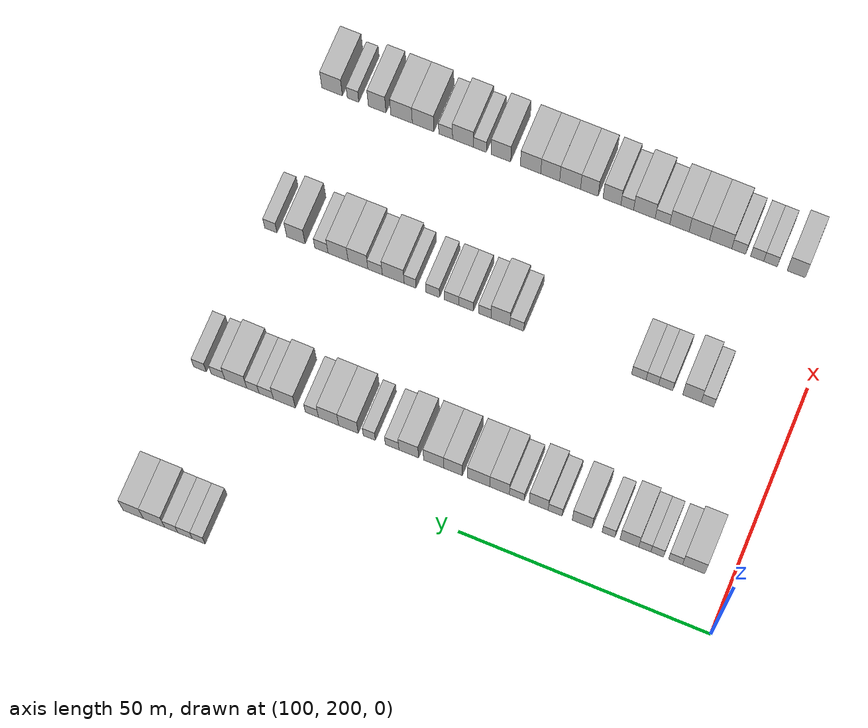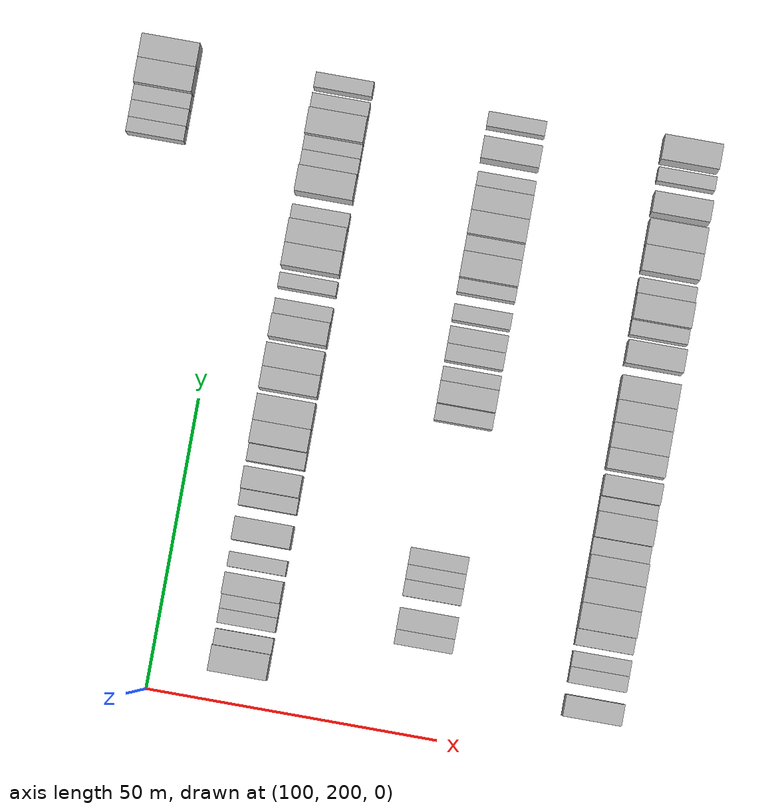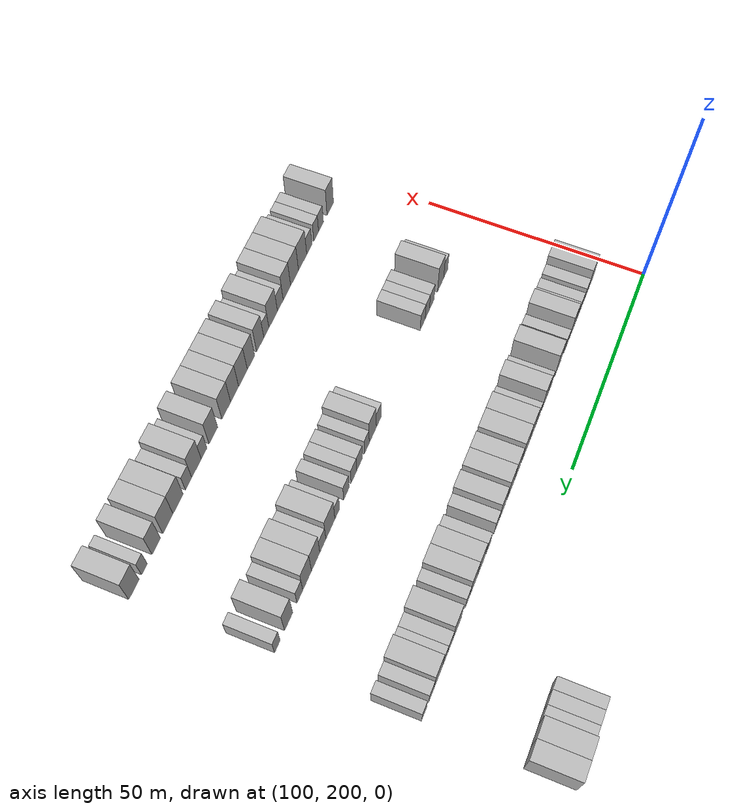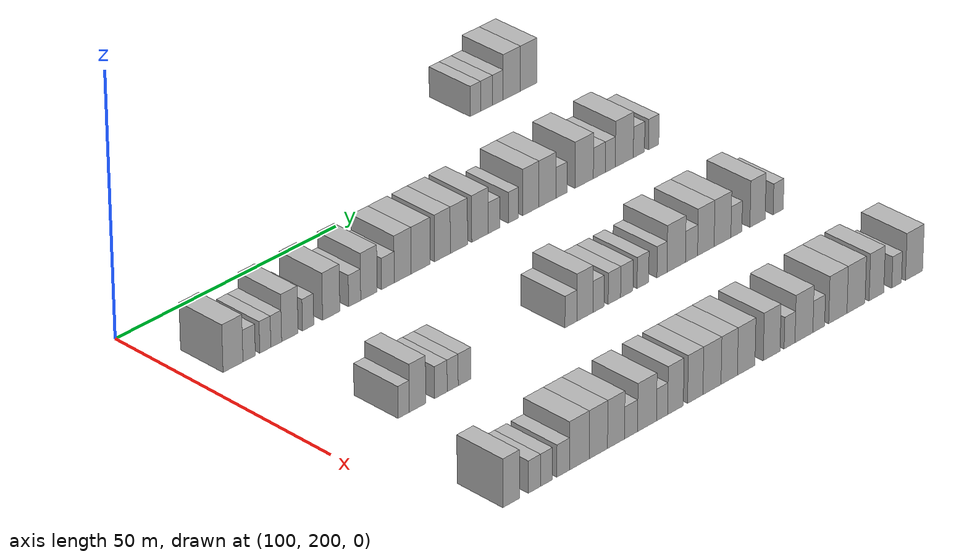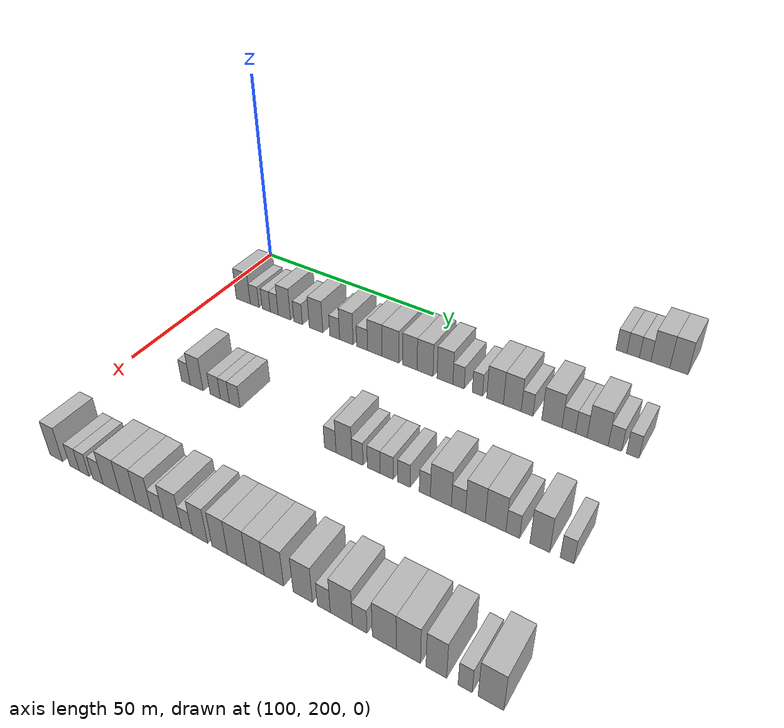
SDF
<sdf version="1.6">
 <world name="default">
  <model name="building_633">
   <static>1</static>
   <pose>85.0000 293.5339 0 0.000000 0.000000 0.000000</pose>
   <link name="link">
    <pose>0 0 3.00 0 0 0</pose>
    <collision name="collision"><geometry><box><size>10.0000 2.5480 6.0000</size></box></geometry></collision>
    <visual name="visual">
     <cast_shadows>0</cast_shadows>
     <geometry><box><size>10.0000 2.5480 6.0000</size></box></geometry>
     <material>
      <script>
       <uri>model://HANNAS_wall/materials/scripts</uri>
       <uri>model://HANNAS_wall/materials/textures</uri>
       <name>vrc/HANNAS_wall</name>
      </script>
     </material>
    </visual>
   </link>
  </model>
  <model name="building_634">
   <static>1</static>
   <pose>85.0000 296.2782 0 0.000000 0.000000 0.000000</pose>
   <link name="link">
    <pose>0 0 3.00 0 0 0</pose>
    <collision name="collision"><geometry><box><size>10.0000 2.9406 6.0000</size></box></geometry></collision>
    <visual name="visual">
     <cast_shadows>0</cast_shadows>
     <geometry><box><size>10.0000 2.9406 6.0000</size></box></geometry>
     <material>
      <script>
       <uri>model://HANNAS_wall/materials/scripts</uri>
       <uri>model://HANNAS_wall/materials/textures</uri>
       <name>vrc/HANNAS_wall</name>
      </script>
     </material>
    </visual>
   </link>
  </model>
  <model name="building_635">
   <static>1</static>
   <pose>85.0000 299.0846 0 0.000000 0.000000 0.000000</pose>
   <link name="link">
    <pose>0 0 3.00 0 0 0</pose>
    <collision name="collision"><geometry><box><size>10.0000 2.6723 6.0000</size></box></geometry></collision>
    <visual name="visual">
     <cast_shadows>0</cast_shadows>
     <geometry><box><size>10.0000 2.6723 6.0000</size></box></geometry>
     <material>
      <script>
       <uri>model://HANNAS_wall/materials/scripts</uri>
       <uri>model://HANNAS_wall/materials/textures</uri>
       <name>vrc/HANNAS_wall</name>
      </script>
     </material>
    </visual>
   </link>
  </model>
  <model name="building_636">
   <static>1</static>
   <pose>85.0000 302.5750 0 0.000000 0.000000 0.000000</pose>
   <link name="link">
    <pose>0 0 4.50 0 0 0</pose>
    <collision name="collision"><geometry><box><size>10.0000 4.3084 9.0000</size></box></geometry></collision>
    <visual name="visual">
     <cast_shadows>0</cast_shadows>
     <geometry><box><size>10.0000 4.3084 9.0000</size></box></geometry>
     <material>
      <script>
       <uri>model://HANNAS_wall/materials/scripts</uri>
       <uri>model://HANNAS_wall/materials/textures</uri>
       <name>vrc/HANNAS_wall</name>
      </script>
     </material>
    </visual>
   </link>
  </model>
  <model name="building_637">
   <static>1</static>
   <pose>85.0000 306.7783 0 0.000000 0.000000 0.000000</pose>
   <link name="link">
    <pose>0 0 4.50 0 0 0</pose>
    <collision name="collision"><geometry><box><size>10.0000 4.0982 9.0000</size></box></geometry></collision>
    <visual name="visual">
     <cast_shadows>0</cast_shadows>
     <geometry><box><size>10.0000 4.0982 9.0000</size></box></geometry>
     <material>
      <script>
       <uri>model://HANNAS_wall/materials/scripts</uri>
       <uri>model://HANNAS_wall/materials/textures</uri>
       <name>vrc/HANNAS_wall</name>
      </script>
     </material>
    </visual>
   </link>
  </model>
  <model name="building_836">
   <static>1</static>
   <pose>115.0000 207.2907 0 0.000000 0.000000 0.000000</pose>
   <link name="link">
    <pose>0 0 4.50 0 0 0</pose>
    <collision name="collision"><geometry><box><size>10.0000 4.4236 9.0000</size></box></geometry></collision>
    <visual name="visual">
     <cast_shadows>0</cast_shadows>
     <geometry><box><size>10.0000 4.4236 9.0000</size></box></geometry>
     <material>
      <script>
       <uri>model://HANNAS_wall/materials/scripts</uri>
       <uri>model://HANNAS_wall/materials/textures</uri>
       <name>vrc/HANNAS_wall</name>
      </script>
     </material>
    </visual>
   </link>
  </model>
  <model name="building_837">
   <static>1</static>
   <pose>115.0000 210.8788 0 0.000000 0.000000 0.000000</pose>
   <link name="link">
    <pose>0 0 3.00 0 0 0</pose>
    <collision name="collision"><geometry><box><size>10.0000 2.7527 6.0000</size></box></geometry></collision>
    <visual name="visual">
     <cast_shadows>0</cast_shadows>
     <geometry><box><size>10.0000 2.7527 6.0000</size></box></geometry>
     <material>
      <script>
       <uri>model://HANNAS_wall/materials/scripts</uri>
       <uri>model://HANNAS_wall/materials/textures</uri>
       <name>vrc/HANNAS_wall</name>
      </script>
     </material>
    </visual>
   </link>
  </model>
  <model name="building_838">
   <static>1</static>
   <pose>115.0000 214.4944 0 0.000000 0.000000 0.000000</pose>
   <link name="link">
    <pose>0 0 3.00 0 0 0</pose>
    <collision name="collision"><geometry><box><size>10.0000 2.4784 6.0000</size></box></geometry></collision>
    <visual name="visual">
     <cast_shadows>0</cast_shadows>
     <geometry><box><size>10.0000 2.4784 6.0000</size></box></geometry>
     <material>
      <script>
       <uri>model://HANNAS_wall/materials/scripts</uri>
       <uri>model://HANNAS_wall/materials/textures</uri>
       <name>vrc/HANNAS_wall</name>
      </script>
     </material>
    </visual>
   </link>
  </model>
  <model name="building_839">
   <static>1</static>
   <pose>115.0000 216.9466 0 0.000000 0.000000 0.000000</pose>
   <link name="link">
    <pose>0 0 3.00 0 0 0</pose>
    <collision name="collision"><geometry><box><size>10.0000 2.4261 6.0000</size></box></geometry></collision>
    <visual name="visual">
     <cast_shadows>0</cast_shadows>
     <geometry><box><size>10.0000 2.4261 6.0000</size></box></geometry>
     <material>
      <script>
       <uri>model://HANNAS_wall/materials/scripts</uri>
       <uri>model://HANNAS_wall/materials/textures</uri>
       <name>vrc/HANNAS_wall</name>
      </script>
     </material>
    </visual>
   </link>
  </model>
  <model name="building_840">
   <static>1</static>
   <pose>115.0000 220.0185 0 0.000000 0.000000 0.000000</pose>
   <link name="link">
    <pose>0 0 4.50 0 0 0</pose>
    <collision name="collision"><geometry><box><size>10.0000 3.7176 9.0000</size></box></geometry></collision>
    <visual name="visual">
     <cast_shadows>0</cast_shadows>
     <geometry><box><size>10.0000 3.7176 9.0000</size></box></geometry>
     <material>
      <script>
       <uri>model://HANNAS_wall/materials/scripts</uri>
       <uri>model://HANNAS_wall/materials/textures</uri>
       <name>vrc/HANNAS_wall</name>
      </script>
     </material>
    </visual>
   </link>
  </model>
  <model name="building_841">
   <static>1</static>
   <pose>115.0000 224.1563 0 0.000000 0.000000 0.000000</pose>
   <link name="link">
    <pose>0 0 3.00 0 0 0</pose>
    <collision name="collision"><geometry><box><size>10.0000 2.5581 6.0000</size></box></geometry></collision>
    <visual name="visual">
     <cast_shadows>0</cast_shadows>
     <geometry><box><size>10.0000 2.5581 6.0000</size></box></geometry>
     <material>
      <script>
       <uri>model://HANNAS_wall/materials/scripts</uri>
       <uri>model://HANNAS_wall/materials/textures</uri>
       <name>vrc/HANNAS_wall</name>
      </script>
     </material>
    </visual>
   </link>
  </model>
  <model name="building_842">
   <static>1</static>
   <pose>115.0000 229.4075 0 0.000000 0.000000 0.000000</pose>
   <link name="link">
    <pose>0 0 4.50 0 0 0</pose>
    <collision name="collision"><geometry><box><size>10.0000 3.9442 9.0000</size></box></geometry></collision>
    <visual name="visual">
     <cast_shadows>0</cast_shadows>
     <geometry><box><size>10.0000 3.9442 9.0000</size></box></geometry>
     <material>
      <script>
       <uri>model://HANNAS_wall/materials/scripts</uri>
       <uri>model://HANNAS_wall/materials/textures</uri>
       <name>vrc/HANNAS_wall</name>
      </script>
     </material>
    </visual>
   </link>
  </model>
  <model name="building_843">
   <static>1</static>
   <pose>115.0000 234.7738 0 0.000000 0.000000 0.000000</pose>
   <link name="link">
    <pose>0 0 3.00 0 0 0</pose>
    <collision name="collision"><geometry><box><size>10.0000 2.7885 6.0000</size></box></geometry></collision>
    <visual name="visual">
     <cast_shadows>0</cast_shadows>
     <geometry><box><size>10.0000 2.7885 6.0000</size></box></geometry>
     <material>
      <script>
       <uri>model://HANNAS_wall/materials/scripts</uri>
       <uri>model://HANNAS_wall/materials/textures</uri>
       <name>vrc/HANNAS_wall</name>
      </script>
     </material>
    </visual>
   </link>
  </model>
  <model name="building_844">
   <static>1</static>
   <pose>115.0000 238.0710 0 0.000000 0.000000 0.000000</pose>
   <link name="link">
    <pose>0 0 4.50 0 0 0</pose>
    <collision name="collision"><geometry><box><size>10.0000 3.8059 9.0000</size></box></geometry></collision>
    <visual name="visual">
     <cast_shadows>0</cast_shadows>
     <geometry><box><size>10.0000 3.8059 9.0000</size></box></geometry>
     <material>
      <script>
       <uri>model://HANNAS_wall/materials/scripts</uri>
       <uri>model://HANNAS_wall/materials/textures</uri>
       <name>vrc/HANNAS_wall</name>
      </script>
     </material>
    </visual>
   </link>
  </model>
  <model name="building_845">
   <static>1</static>
   <pose>115.0000 242.4579 0 0.000000 0.000000 0.000000</pose>
   <link name="link">
    <pose>0 0 3.00 0 0 0</pose>
    <collision name="collision"><geometry><box><size>10.0000 2.9680 6.0000</size></box></geometry></collision>
    <visual name="visual">
     <cast_shadows>0</cast_shadows>
     <geometry><box><size>10.0000 2.9680 6.0000</size></box></geometry>
     <material>
      <script>
       <uri>model://HANNAS_wall/materials/scripts</uri>
       <uri>model://HANNAS_wall/materials/textures</uri>
       <name>vrc/HANNAS_wall</name>
      </script>
     </material>
    </visual>
   </link>
  </model>
  <model name="building_846">
   <static>1</static>
   <pose>115.0000 245.8985 0 0.000000 0.000000 0.000000</pose>
   <link name="link">
    <pose>0 0 4.50 0 0 0</pose>
    <collision name="collision"><geometry><box><size>10.0000 3.9132 9.0000</size></box></geometry></collision>
    <visual name="visual">
     <cast_shadows>0</cast_shadows>
     <geometry><box><size>10.0000 3.9132 9.0000</size></box></geometry>
     <material>
      <script>
       <uri>model://HANNAS_wall/materials/scripts</uri>
       <uri>model://HANNAS_wall/materials/textures</uri>
       <name>vrc/HANNAS_wall</name>
      </script>
     </material>
    </visual>
   </link>
  </model>
  <model name="building_847">
   <static>1</static>
   <pose>115.0000 250.1018 0 0.000000 0.000000 0.000000</pose>
   <link name="link">
    <pose>0 0 4.50 0 0 0</pose>
    <collision name="collision"><geometry><box><size>10.0000 4.4934 9.0000</size></box></geometry></collision>
    <visual name="visual">
     <cast_shadows>0</cast_shadows>
     <geometry><box><size>10.0000 4.4934 9.0000</size></box></geometry>
     <material>
      <script>
       <uri>model://HANNAS_wall/materials/scripts</uri>
       <uri>model://HANNAS_wall/materials/textures</uri>
       <name>vrc/HANNAS_wall</name>
      </script>
     </material>
    </visual>
   </link>
  </model>
  <model name="building_848">
   <static>1</static>
   <pose>115.0000 255.2104 0 0.000000 0.000000 0.000000</pose>
   <link name="link">
    <pose>0 0 4.50 0 0 0</pose>
    <collision name="collision"><geometry><box><size>10.0000 3.7239 9.0000</size></box></geometry></collision>
    <visual name="visual">
     <cast_shadows>0</cast_shadows>
     <geometry><box><size>10.0000 3.7239 9.0000</size></box></geometry>
     <material>
      <script>
       <uri>model://HANNAS_wall/materials/scripts</uri>
       <uri>model://HANNAS_wall/materials/textures</uri>
       <name>vrc/HANNAS_wall</name>
      </script>
     </material>
    </visual>
   </link>
  </model>
  <model name="building_849">
   <static>1</static>
   <pose>115.0000 259.1088 0 0.000000 0.000000 0.000000</pose>
   <link name="link">
    <pose>0 0 4.50 0 0 0</pose>
    <collision name="collision"><geometry><box><size>10.0000 4.0728 9.0000</size></box></geometry></collision>
    <visual name="visual">
     <cast_shadows>0</cast_shadows>
     <geometry><box><size>10.0000 4.0728 9.0000</size></box></geometry>
     <material>
      <script>
       <uri>model://HANNAS_wall/materials/scripts</uri>
       <uri>model://HANNAS_wall/materials/textures</uri>
       <name>vrc/HANNAS_wall</name>
      </script>
     </material>
    </visual>
   </link>
  </model>
  <model name="building_850">
   <static>1</static>
   <pose>115.0000 264.1243 0 0.000000 0.000000 0.000000</pose>
   <link name="link">
    <pose>0 0 4.50 0 0 0</pose>
    <collision name="collision"><geometry><box><size>10.0000 3.9581 9.0000</size></box></geometry></collision>
    <visual name="visual">
     <cast_shadows>0</cast_shadows>
     <geometry><box><size>10.0000 3.9581 9.0000</size></box></geometry>
     <material>
      <script>
       <uri>model://HANNAS_wall/materials/scripts</uri>
       <uri>model://HANNAS_wall/materials/textures</uri>
       <name>vrc/HANNAS_wall</name>
      </script>
     </material>
    </visual>
   </link>
  </model>
  <model name="building_851">
   <static>1</static>
   <pose>115.0000 267.4891 0 0.000000 0.000000 0.000000</pose>
   <link name="link">
    <pose>0 0 3.00 0 0 0</pose>
    <collision name="collision"><geometry><box><size>10.0000 2.7716 6.0000</size></box></geometry></collision>
    <visual name="visual">
     <cast_shadows>0</cast_shadows>
     <geometry><box><size>10.0000 2.7716 6.0000</size></box></geometry>
     <material>
      <script>
       <uri>model://HANNAS_wall/materials/scripts</uri>
       <uri>model://HANNAS_wall/materials/textures</uri>
       <name>vrc/HANNAS_wall</name>
      </script>
     </material>
    </visual>
   </link>
  </model>
  <model name="building_852">
   <static>1</static>
   <pose>115.0000 272.1061 0 0.000000 0.000000 0.000000</pose>
   <link name="link">
    <pose>0 0 3.00 0 0 0</pose>
    <collision name="collision"><geometry><box><size>10.0000 2.4623 6.0000</size></box></geometry></collision>
    <visual name="visual">
     <cast_shadows>0</cast_shadows>
     <geometry><box><size>10.0000 2.4623 6.0000</size></box></geometry>
     <material>
      <script>
       <uri>model://HANNAS_wall/materials/scripts</uri>
       <uri>model://HANNAS_wall/materials/textures</uri>
       <name>vrc/HANNAS_wall</name>
      </script>
     </material>
    </visual>
   </link>
  </model>
  <model name="building_853">
   <static>1</static>
   <pose>115.0000 276.3105 0 0.000000 0.000000 0.000000</pose>
   <link name="link">
    <pose>0 0 4.50 0 0 0</pose>
    <collision name="collision"><geometry><box><size>10.0000 3.9464 9.0000</size></box></geometry></collision>
    <visual name="visual">
     <cast_shadows>0</cast_shadows>
     <geometry><box><size>10.0000 3.9464 9.0000</size></box></geometry>
     <material>
      <script>
       <uri>model://HANNAS_wall/materials/scripts</uri>
       <uri>model://HANNAS_wall/materials/textures</uri>
       <name>vrc/HANNAS_wall</name>
      </script>
     </material>
    </visual>
   </link>
  </model>
  <model name="building_854">
   <static>1</static>
   <pose>115.0000 280.3459 0 0.000000 0.000000 0.000000</pose>
   <link name="link">
    <pose>0 0 4.50 0 0 0</pose>
    <collision name="collision"><geometry><box><size>10.0000 4.1245 9.0000</size></box></geometry></collision>
    <visual name="visual">
     <cast_shadows>0</cast_shadows>
     <geometry><box><size>10.0000 4.1245 9.0000</size></box></geometry>
     <material>
      <script>
       <uri>model://HANNAS_wall/materials/scripts</uri>
       <uri>model://HANNAS_wall/materials/textures</uri>
       <name>vrc/HANNAS_wall</name>
      </script>
     </material>
    </visual>
   </link>
  </model>
  <model name="building_855">
   <static>1</static>
   <pose>115.0000 283.7492 0 0.000000 0.000000 0.000000</pose>
   <link name="link">
    <pose>0 0 3.00 0 0 0</pose>
    <collision name="collision"><geometry><box><size>10.0000 2.6820 6.0000</size></box></geometry></collision>
    <visual name="visual">
     <cast_shadows>0</cast_shadows>
     <geometry><box><size>10.0000 2.6820 6.0000</size></box></geometry>
     <material>
      <script>
       <uri>model://HANNAS_wall/materials/scripts</uri>
       <uri>model://HANNAS_wall/materials/textures</uri>
       <name>vrc/HANNAS_wall</name>
      </script>
     </material>
    </visual>
   </link>
  </model>
  <model name="building_856">
   <static>1</static>
   <pose>115.0000 289.3333 0 0.000000 0.000000 0.000000</pose>
   <link name="link">
    <pose>0 0 4.50 0 0 0</pose>
    <collision name="collision"><geometry><box><size>10.0000 4.4862 9.0000</size></box></geometry></collision>
    <visual name="visual">
     <cast_shadows>0</cast_shadows>
     <geometry><box><size>10.0000 4.4862 9.0000</size></box></geometry>
     <material>
      <script>
       <uri>model://HANNAS_wall/materials/scripts</uri>
       <uri>model://HANNAS_wall/materials/textures</uri>
       <name>vrc/HANNAS_wall</name>
      </script>
     </material>
    </visual>
   </link>
  </model>
  <model name="building_857">
   <static>1</static>
   <pose>115.0000 293.0464 0 0.000000 0.000000 0.000000</pose>
   <link name="link">
    <pose>0 0 3.00 0 0 0</pose>
    <collision name="collision"><geometry><box><size>10.0000 2.9401 6.0000</size></box></geometry></collision>
    <visual name="visual">
     <cast_shadows>0</cast_shadows>
     <geometry><box><size>10.0000 2.9401 6.0000</size></box></geometry>
     <material>
      <script>
       <uri>model://HANNAS_wall/materials/scripts</uri>
       <uri>model://HANNAS_wall/materials/textures</uri>
       <name>vrc/HANNAS_wall</name>
      </script>
     </material>
    </visual>
   </link>
  </model>
  <model name="building_858">
   <static>1</static>
   <pose>115.0000 295.7673 0 0.000000 0.000000 0.000000</pose>
   <link name="link">
    <pose>0 0 3.00 0 0 0</pose>
    <collision name="collision"><geometry><box><size>10.0000 2.5017 6.0000</size></box></geometry></collision>
    <visual name="visual">
     <cast_shadows>0</cast_shadows>
     <geometry><box><size>10.0000 2.5017 6.0000</size></box></geometry>
     <material>
      <script>
       <uri>model://HANNAS_wall/materials/scripts</uri>
       <uri>model://HANNAS_wall/materials/textures</uri>
       <name>vrc/HANNAS_wall</name>
      </script>
     </material>
    </visual>
   </link>
  </model>
  <model name="building_859">
   <static>1</static>
   <pose>115.0000 299.2565 0 0.000000 0.000000 0.000000</pose>
   <link name="link">
    <pose>0 0 4.50 0 0 0</pose>
    <collision name="collision"><geometry><box><size>10.0000 4.4767 9.0000</size></box></geometry></collision>
    <visual name="visual">
     <cast_shadows>0</cast_shadows>
     <geometry><box><size>10.0000 4.4767 9.0000</size></box></geometry>
     <material>
      <script>
       <uri>model://HANNAS_wall/materials/scripts</uri>
       <uri>model://HANNAS_wall/materials/textures</uri>
       <name>vrc/HANNAS_wall</name>
      </script>
     </material>
    </visual>
   </link>
  </model>
  <model name="building_860">
   <static>1</static>
   <pose>115.0000 302.8868 0 0.000000 0.000000 0.000000</pose>
   <link name="link">
    <pose>0 0 3.00 0 0 0</pose>
    <collision name="collision"><geometry><box><size>10.0000 2.7838 6.0000</size></box></geometry></collision>
    <visual name="visual">
     <cast_shadows>0</cast_shadows>
     <geometry><box><size>10.0000 2.7838 6.0000</size></box></geometry>
     <material>
      <script>
       <uri>model://HANNAS_wall/materials/scripts</uri>
       <uri>model://HANNAS_wall/materials/textures</uri>
       <name>vrc/HANNAS_wall</name>
      </script>
     </material>
    </visual>
   </link>
  </model>
  <model name="building_861">
   <static>1</static>
   <pose>115.0000 306.5700 0 0.000000 0.000000 0.000000</pose>
   <link name="link">
    <pose>0 0 3.00 0 0 0</pose>
    <collision name="collision"><geometry><box><size>10.0000 2.5825 6.0000</size></box></geometry></collision>
    <visual name="visual">
     <cast_shadows>0</cast_shadows>
     <geometry><box><size>10.0000 2.5825 6.0000</size></box></geometry>
     <material>
      <script>
       <uri>model://HANNAS_wall/materials/scripts</uri>
       <uri>model://HANNAS_wall/materials/textures</uri>
       <name>vrc/HANNAS_wall</name>
      </script>
     </material>
    </visual>
   </link>
  </model>
  <model name="building_1058">
   <static>1</static>
   <pose>145.0000 216.2215 0 0.000000 0.000000 0.000000</pose>
   <link name="link">
    <pose>0 0 3.00 0 0 0</pose>
    <collision name="collision"><geometry><box><size>10.0000 2.5117 6.0000</size></box></geometry></collision>
    <visual name="visual">
     <cast_shadows>0</cast_shadows>
     <geometry><box><size>10.0000 2.5117 6.0000</size></box></geometry>
     <material>
      <script>
       <uri>model://HANNAS_wall/materials/scripts</uri>
       <uri>model://HANNAS_wall/materials/textures</uri>
       <name>vrc/HANNAS_wall</name>
      </script>
     </material>
    </visual>
   </link>
  </model>
  <model name="building_1059">
   <static>1</static>
   <pose>145.0000 219.3372 0 0.000000 0.000000 0.000000</pose>
   <link name="link">
    <pose>0 0 4.50 0 0 0</pose>
    <collision name="collision"><geometry><box><size>10.0000 3.7197 9.0000</size></box></geometry></collision>
    <visual name="visual">
     <cast_shadows>0</cast_shadows>
     <geometry><box><size>10.0000 3.7197 9.0000</size></box></geometry>
     <material>
      <script>
       <uri>model://HANNAS_wall/materials/scripts</uri>
       <uri>model://HANNAS_wall/materials/textures</uri>
       <name>vrc/HANNAS_wall</name>
      </script>
     </material>
    </visual>
   </link>
  </model>
  <model name="building_1060">
   <static>1</static>
   <pose>145.0000 224.6215 0 0.000000 0.000000 0.000000</pose>
   <link name="link">
    <pose>0 0 3.00 0 0 0</pose>
    <collision name="collision"><geometry><box><size>10.0000 2.8488 6.0000</size></box></geometry></collision>
    <visual name="visual">
     <cast_shadows>0</cast_shadows>
     <geometry><box><size>10.0000 2.8488 6.0000</size></box></geometry>
     <material>
      <script>
       <uri>model://HANNAS_wall/materials/scripts</uri>
       <uri>model://HANNAS_wall/materials/textures</uri>
       <name>vrc/HANNAS_wall</name>
      </script>
     </material>
    </visual>
   </link>
  </model>
  <model name="building_1061">
   <static>1</static>
   <pose>145.0000 227.3015 0 0.000000 0.000000 0.000000</pose>
   <link name="link">
    <pose>0 0 3.00 0 0 0</pose>
    <collision name="collision"><geometry><box><size>10.0000 2.5113 6.0000</size></box></geometry></collision>
    <visual name="visual">
     <cast_shadows>0</cast_shadows>
     <geometry><box><size>10.0000 2.5113 6.0000</size></box></geometry>
     <material>
      <script>
       <uri>model://HANNAS_wall/materials/scripts</uri>
       <uri>model://HANNAS_wall/materials/textures</uri>
       <name>vrc/HANNAS_wall</name>
      </script>
     </material>
    </visual>
   </link>
  </model>
  <model name="building_1062">
   <static>1</static>
   <pose>145.0000 230.0251 0 0.000000 0.000000 0.000000</pose>
   <link name="link">
    <pose>0 0 3.00 0 0 0</pose>
    <collision name="collision"><geometry><box><size>10.0000 2.9358 6.0000</size></box></geometry></collision>
    <visual name="visual">
     <cast_shadows>0</cast_shadows>
     <geometry><box><size>10.0000 2.9358 6.0000</size></box></geometry>
     <material>
      <script>
       <uri>model://HANNAS_wall/materials/scripts</uri>
       <uri>model://HANNAS_wall/materials/textures</uri>
       <name>vrc/HANNAS_wall</name>
      </script>
     </material>
    </visual>
   </link>
  </model>
  <model name="building_1063">
   <static>1</static>
   <pose>145.0000 254.7056 0 0.000000 0.000000 0.000000</pose>
   <link name="link">
    <pose>0 0 3.00 0 0 0</pose>
    <collision name="collision"><geometry><box><size>10.0000 2.8084 6.0000</size></box></geometry></collision>
    <visual name="visual">
     <cast_shadows>0</cast_shadows>
     <geometry><box><size>10.0000 2.8084 6.0000</size></box></geometry>
     <material>
      <script>
       <uri>model://HANNAS_wall/materials/scripts</uri>
       <uri>model://HANNAS_wall/materials/textures</uri>
       <name>vrc/HANNAS_wall</name>
      </script>
     </material>
    </visual>
   </link>
  </model>
  <model name="building_1064">
   <static>1</static>
   <pose>145.0000 258.0182 0 0.000000 0.000000 0.000000</pose>
   <link name="link">
    <pose>0 0 4.50 0 0 0</pose>
    <collision name="collision"><geometry><box><size>10.0000 3.8169 9.0000</size></box></geometry></collision>
    <visual name="visual">
     <cast_shadows>0</cast_shadows>
     <geometry><box><size>10.0000 3.8169 9.0000</size></box></geometry>
     <material>
      <script>
       <uri>model://HANNAS_wall/materials/scripts</uri>
       <uri>model://HANNAS_wall/materials/textures</uri>
       <name>vrc/HANNAS_wall</name>
      </script>
     </material>
    </visual>
   </link>
  </model>
  <model name="building_1065">
   <static>1</static>
   <pose>145.0000 261.2311 0 0.000000 0.000000 0.000000</pose>
   <link name="link">
    <pose>0 0 3.00 0 0 0</pose>
    <collision name="collision"><geometry><box><size>10.0000 2.6089 6.0000</size></box></geometry></collision>
    <visual name="visual">
     <cast_shadows>0</cast_shadows>
     <geometry><box><size>10.0000 2.6089 6.0000</size></box></geometry>
     <material>
      <script>
       <uri>model://HANNAS_wall/materials/scripts</uri>
       <uri>model://HANNAS_wall/materials/textures</uri>
       <name>vrc/HANNAS_wall</name>
      </script>
     </material>
    </visual>
   </link>
  </model>
  <model name="building_1066">
   <static>1</static>
   <pose>145.0000 265.0163 0 0.000000 0.000000 0.000000</pose>
   <link name="link">
    <pose>0 0 3.00 0 0 0</pose>
    <collision name="collision"><geometry><box><size>10.0000 2.9615 6.0000</size></box></geometry></collision>
    <visual name="visual">
     <cast_shadows>0</cast_shadows>
     <geometry><box><size>10.0000 2.9615 6.0000</size></box></geometry>
     <material>
      <script>
       <uri>model://HANNAS_wall/materials/scripts</uri>
       <uri>model://HANNAS_wall/materials/textures</uri>
       <name>vrc/HANNAS_wall</name>
      </script>
     </material>
    </visual>
   </link>
  </model>
  <model name="building_1067">
   <static>1</static>
   <pose>145.0000 267.9795 0 0.000000 0.000000 0.000000</pose>
   <link name="link">
    <pose>0 0 3.00 0 0 0</pose>
    <collision name="collision"><geometry><box><size>10.0000 2.9649 6.0000</size></box></geometry></collision>
    <visual name="visual">
     <cast_shadows>0</cast_shadows>
     <geometry><box><size>10.0000 2.9649 6.0000</size></box></geometry>
     <material>
      <script>
       <uri>model://HANNAS_wall/materials/scripts</uri>
       <uri>model://HANNAS_wall/materials/textures</uri>
       <name>vrc/HANNAS_wall</name>
      </script>
     </material>
    </visual>
   </link>
  </model>
  <model name="building_1068">
   <static>1</static>
   <pose>145.0000 271.8608 0 0.000000 0.000000 0.000000</pose>
   <link name="link">
    <pose>0 0 3.00 0 0 0</pose>
    <collision name="collision"><geometry><box><size>10.0000 2.7977 6.0000</size></box></geometry></collision>
    <visual name="visual">
     <cast_shadows>0</cast_shadows>
     <geometry><box><size>10.0000 2.7977 6.0000</size></box></geometry>
     <material>
      <script>
       <uri>model://HANNAS_wall/materials/scripts</uri>
       <uri>model://HANNAS_wall/materials/textures</uri>
       <name>vrc/HANNAS_wall</name>
      </script>
     </material>
    </visual>
   </link>
  </model>
  <model name="building_1069">
   <static>1</static>
   <pose>145.0000 276.4714 0 0.000000 0.000000 0.000000</pose>
   <link name="link">
    <pose>0 0 3.00 0 0 0</pose>
    <collision name="collision"><geometry><box><size>10.0000 2.4235 6.0000</size></box></geometry></collision>
    <visual name="visual">
     <cast_shadows>0</cast_shadows>
     <geometry><box><size>10.0000 2.4235 6.0000</size></box></geometry>
     <material>
      <script>
       <uri>model://HANNAS_wall/materials/scripts</uri>
       <uri>model://HANNAS_wall/materials/textures</uri>
       <name>vrc/HANNAS_wall</name>
      </script>
     </material>
    </visual>
   </link>
  </model>
  <model name="building_1070">
   <static>1</static>
   <pose>145.0000 279.9297 0 0.000000 0.000000 0.000000</pose>
   <link name="link">
    <pose>0 0 4.50 0 0 0</pose>
    <collision name="collision"><geometry><box><size>10.0000 4.4930 9.0000</size></box></geometry></collision>
    <visual name="visual">
     <cast_shadows>0</cast_shadows>
     <geometry><box><size>10.0000 4.4930 9.0000</size></box></geometry>
     <material>
      <script>
       <uri>model://HANNAS_wall/materials/scripts</uri>
       <uri>model://HANNAS_wall/materials/textures</uri>
       <name>vrc/HANNAS_wall</name>
      </script>
     </material>
    </visual>
   </link>
  </model>
  <model name="building_1071">
   <static>1</static>
   <pose>145.0000 283.6601 0 0.000000 0.000000 0.000000</pose>
   <link name="link">
    <pose>0 0 3.00 0 0 0</pose>
    <collision name="collision"><geometry><box><size>10.0000 2.9679 6.0000</size></box></geometry></collision>
    <visual name="visual">
     <cast_shadows>0</cast_shadows>
     <geometry><box><size>10.0000 2.9679 6.0000</size></box></geometry>
     <material>
      <script>
       <uri>model://HANNAS_wall/materials/scripts</uri>
       <uri>model://HANNAS_wall/materials/textures</uri>
       <name>vrc/HANNAS_wall</name>
      </script>
     </material>
    </visual>
   </link>
  </model>
  <model name="building_1072">
   <static>1</static>
   <pose>145.0000 287.1710 0 0.000000 0.000000 0.000000</pose>
   <link name="link">
    <pose>0 0 4.50 0 0 0</pose>
    <collision name="collision"><geometry><box><size>10.0000 4.0540 9.0000</size></box></geometry></collision>
    <visual name="visual">
     <cast_shadows>0</cast_shadows>
     <geometry><box><size>10.0000 4.0540 9.0000</size></box></geometry>
     <material>
      <script>
       <uri>model://HANNAS_wall/materials/scripts</uri>
       <uri>model://HANNAS_wall/materials/textures</uri>
       <name>vrc/HANNAS_wall</name>
      </script>
     </material>
    </visual>
   </link>
  </model>
  <model name="building_1073">
   <static>1</static>
   <pose>145.0000 291.2718 0 0.000000 0.000000 0.000000</pose>
   <link name="link">
    <pose>0 0 4.50 0 0 0</pose>
    <collision name="collision"><geometry><box><size>10.0000 4.1477 9.0000</size></box></geometry></collision>
    <visual name="visual">
     <cast_shadows>0</cast_shadows>
     <geometry><box><size>10.0000 4.1477 9.0000</size></box></geometry>
     <material>
      <script>
       <uri>model://HANNAS_wall/materials/scripts</uri>
       <uri>model://HANNAS_wall/materials/textures</uri>
       <name>vrc/HANNAS_wall</name>
      </script>
     </material>
    </visual>
   </link>
  </model>
  <model name="building_1074">
   <static>1</static>
   <pose>145.0000 294.7065 0 0.000000 0.000000 0.000000</pose>
   <link name="link">
    <pose>0 0 3.00 0 0 0</pose>
    <collision name="collision"><geometry><box><size>10.0000 2.7216 6.0000</size></box></geometry></collision>
    <visual name="visual">
     <cast_shadows>0</cast_shadows>
     <geometry><box><size>10.0000 2.7216 6.0000</size></box></geometry>
     <material>
      <script>
       <uri>model://HANNAS_wall/materials/scripts</uri>
       <uri>model://HANNAS_wall/materials/textures</uri>
       <name>vrc/HANNAS_wall</name>
      </script>
     </material>
    </visual>
   </link>
  </model>
  <model name="building_1075">
   <static>1</static>
   <pose>145.0000 299.9665 0 0.000000 0.000000 0.000000</pose>
   <link name="link">
    <pose>0 0 4.50 0 0 0</pose>
    <collision name="collision"><geometry><box><size>10.0000 3.7984 9.0000</size></box></geometry></collision>
    <visual name="visual">
     <cast_shadows>0</cast_shadows>
     <geometry><box><size>10.0000 3.7984 9.0000</size></box></geometry>
     <material>
      <script>
       <uri>model://HANNAS_wall/materials/scripts</uri>
       <uri>model://HANNAS_wall/materials/textures</uri>
       <name>vrc/HANNAS_wall</name>
      </script>
     </material>
    </visual>
   </link>
  </model>
  <model name="building_1076">
   <static>1</static>
   <pose>145.0000 305.1382 0 0.000000 0.000000 0.000000</pose>
   <link name="link">
    <pose>0 0 3.00 0 0 0</pose>
    <collision name="collision"><geometry><box><size>10.0000 2.5449 6.0000</size></box></geometry></collision>
    <visual name="visual">
     <cast_shadows>0</cast_shadows>
     <geometry><box><size>10.0000 2.5449 6.0000</size></box></geometry>
     <material>
      <script>
       <uri>model://HANNAS_wall/materials/scripts</uri>
       <uri>model://HANNAS_wall/materials/textures</uri>
       <name>vrc/HANNAS_wall</name>
      </script>
     </material>
    </visual>
   </link>
  </model>
  <model name="building_1275">
   <static>1</static>
   <pose>175.0000 209.9079 0 0.000000 0.000000 0.000000</pose>
   <link name="link">
    <pose>0 0 4.50 0 0 0</pose>
    <collision name="collision"><geometry><box><size>10.0000 3.6749 9.0000</size></box></geometry></collision>
    <visual name="visual">
     <cast_shadows>0</cast_shadows>
     <geometry><box><size>10.0000 3.6749 9.0000</size></box></geometry>
     <material>
      <script>
       <uri>model://HANNAS_wall/materials/scripts</uri>
       <uri>model://HANNAS_wall/materials/textures</uri>
       <name>vrc/HANNAS_wall</name>
      </script>
     </material>
    </visual>
   </link>
  </model>
  <model name="building_1276">
   <static>1</static>
   <pose>175.0000 215.1140 0 0.000000 0.000000 0.000000</pose>
   <link name="link">
    <pose>0 0 3.00 0 0 0</pose>
    <collision name="collision"><geometry><box><size>10.0000 2.7372 6.0000</size></box></geometry></collision>
    <visual name="visual">
     <cast_shadows>0</cast_shadows>
     <geometry><box><size>10.0000 2.7372 6.0000</size></box></geometry>
     <material>
      <script>
       <uri>model://HANNAS_wall/materials/scripts</uri>
       <uri>model://HANNAS_wall/materials/textures</uri>
       <name>vrc/HANNAS_wall</name>
      </script>
     </material>
    </visual>
   </link>
  </model>
  <model name="building_1277">
   <static>1</static>
   <pose>175.0000 217.8229 0 0.000000 0.000000 0.000000</pose>
   <link name="link">
    <pose>0 0 3.00 0 0 0</pose>
    <collision name="collision"><geometry><box><size>10.0000 2.6805 6.0000</size></box></geometry></collision>
    <visual name="visual">
     <cast_shadows>0</cast_shadows>
     <geometry><box><size>10.0000 2.6805 6.0000</size></box></geometry>
     <material>
      <script>
       <uri>model://HANNAS_wall/materials/scripts</uri>
       <uri>model://HANNAS_wall/materials/textures</uri>
       <name>vrc/HANNAS_wall</name>
      </script>
     </material>
    </visual>
   </link>
  </model>
  <model name="building_1278">
   <static>1</static>
   <pose>175.0000 221.5795 0 0.000000 0.000000 0.000000</pose>
   <link name="link">
    <pose>0 0 3.00 0 0 0</pose>
    <collision name="collision"><geometry><box><size>10.0000 2.8327 6.0000</size></box></geometry></collision>
    <visual name="visual">
     <cast_shadows>0</cast_shadows>
     <geometry><box><size>10.0000 2.8327 6.0000</size></box></geometry>
     <material>
      <script>
       <uri>model://HANNAS_wall/materials/scripts</uri>
       <uri>model://HANNAS_wall/materials/textures</uri>
       <name>vrc/HANNAS_wall</name>
      </script>
     </material>
    </visual>
   </link>
  </model>
  <model name="building_1279">
   <static>1</static>
   <pose>175.0000 225.2375 0 0.000000 0.000000 0.000000</pose>
   <link name="link">
    <pose>0 0 4.50 0 0 0</pose>
    <collision name="collision"><geometry><box><size>10.0000 4.4834 9.0000</size></box></geometry></collision>
    <visual name="visual">
     <cast_shadows>0</cast_shadows>
     <geometry><box><size>10.0000 4.4834 9.0000</size></box></geometry>
     <material>
      <script>
       <uri>model://HANNAS_wall/materials/scripts</uri>
       <uri>model://HANNAS_wall/materials/textures</uri>
       <name>vrc/HANNAS_wall</name>
      </script>
     </material>
    </visual>
   </link>
  </model>
  <model name="building_1280">
   <static>1</static>
   <pose>175.0000 229.5846 0 0.000000 0.000000 0.000000</pose>
   <link name="link">
    <pose>0 0 4.50 0 0 0</pose>
    <collision name="collision"><geometry><box><size>10.0000 4.2109 9.0000</size></box></geometry></collision>
    <visual name="visual">
     <cast_shadows>0</cast_shadows>
     <geometry><box><size>10.0000 4.2109 9.0000</size></box></geometry>
     <material>
      <script>
       <uri>model://HANNAS_wall/materials/scripts</uri>
       <uri>model://HANNAS_wall/materials/textures</uri>
       <name>vrc/HANNAS_wall</name>
      </script>
     </material>
    </visual>
   </link>
  </model>
  <model name="building_1281">
   <static>1</static>
   <pose>175.0000 233.6499 0 0.000000 0.000000 0.000000</pose>
   <link name="link">
    <pose>0 0 4.50 0 0 0</pose>
    <collision name="collision"><geometry><box><size>10.0000 3.9196 9.0000</size></box></geometry></collision>
    <visual name="visual">
     <cast_shadows>0</cast_shadows>
     <geometry><box><size>10.0000 3.9196 9.0000</size></box></geometry>
     <material>
      <script>
       <uri>model://HANNAS_wall/materials/scripts</uri>
       <uri>model://HANNAS_wall/materials/textures</uri>
       <name>vrc/HANNAS_wall</name>
      </script>
     </material>
    </visual>
   </link>
  </model>
  <model name="building_1282">
   <static>1</static>
   <pose>175.0000 237.1057 0 0.000000 0.000000 0.000000</pose>
   <link name="link">
    <pose>0 0 3.00 0 0 0</pose>
    <collision name="collision"><geometry><box><size>10.0000 2.9921 6.0000</size></box></geometry></collision>
    <visual name="visual">
     <cast_shadows>0</cast_shadows>
     <geometry><box><size>10.0000 2.9921 6.0000</size></box></geometry>
     <material>
      <script>
       <uri>model://HANNAS_wall/materials/scripts</uri>
       <uri>model://HANNAS_wall/materials/textures</uri>
       <name>vrc/HANNAS_wall</name>
      </script>
     </material>
    </visual>
   </link>
  </model>
  <model name="building_1283">
   <static>1</static>
   <pose>175.0000 240.8057 0 0.000000 0.000000 0.000000</pose>
   <link name="link">
    <pose>0 0 4.50 0 0 0</pose>
    <collision name="collision"><geometry><box><size>10.0000 4.4077 9.0000</size></box></geometry></collision>
    <visual name="visual">
     <cast_shadows>0</cast_shadows>
     <geometry><box><size>10.0000 4.4077 9.0000</size></box></geometry>
     <material>
      <script>
       <uri>model://HANNAS_wall/materials/scripts</uri>
       <uri>model://HANNAS_wall/materials/textures</uri>
       <name>vrc/HANNAS_wall</name>
      </script>
     </material>
    </visual>
   </link>
  </model>
  <model name="building_1284">
   <static>1</static>
   <pose>175.0000 244.3117 0 0.000000 0.000000 0.000000</pose>
   <link name="link">
    <pose>0 0 3.00 0 0 0</pose>
    <collision name="collision"><geometry><box><size>10.0000 2.6044 6.0000</size></box></geometry></collision>
    <visual name="visual">
     <cast_shadows>0</cast_shadows>
     <geometry><box><size>10.0000 2.6044 6.0000</size></box></geometry>
     <material>
      <script>
       <uri>model://HANNAS_wall/materials/scripts</uri>
       <uri>model://HANNAS_wall/materials/textures</uri>
       <name>vrc/HANNAS_wall</name>
      </script>
     </material>
    </visual>
   </link>
  </model>
  <model name="building_1285">
   <static>1</static>
   <pose>175.0000 247.4443 0 0.000000 0.000000 0.000000</pose>
   <link name="link">
    <pose>0 0 4.50 0 0 0</pose>
    <collision name="collision"><geometry><box><size>10.0000 3.6607 9.0000</size></box></geometry></collision>
    <visual name="visual">
     <cast_shadows>0</cast_shadows>
     <geometry><box><size>10.0000 3.6607 9.0000</size></box></geometry>
     <material>
      <script>
       <uri>model://HANNAS_wall/materials/scripts</uri>
       <uri>model://HANNAS_wall/materials/textures</uri>
       <name>vrc/HANNAS_wall</name>
      </script>
     </material>
    </visual>
   </link>
  </model>
  <model name="building_1286">
   <static>1</static>
   <pose>175.0000 252.0828 0 0.000000 0.000000 0.000000</pose>
   <link name="link">
    <pose>0 0 4.50 0 0 0</pose>
    <collision name="collision"><geometry><box><size>10.0000 3.6163 9.0000</size></box></geometry></collision>
    <visual name="visual">
     <cast_shadows>0</cast_shadows>
     <geometry><box><size>10.0000 3.6163 9.0000</size></box></geometry>
     <material>
      <script>
       <uri>model://HANNAS_wall/materials/scripts</uri>
       <uri>model://HANNAS_wall/materials/textures</uri>
       <name>vrc/HANNAS_wall</name>
      </script>
     </material>
    </visual>
   </link>
  </model>
  <model name="building_1287">
   <static>1</static>
   <pose>175.0000 256.0290 0 0.000000 0.000000 0.000000</pose>
   <link name="link">
    <pose>0 0 4.50 0 0 0</pose>
    <collision name="collision"><geometry><box><size>10.0000 4.2763 9.0000</size></box></geometry></collision>
    <visual name="visual">
     <cast_shadows>0</cast_shadows>
     <geometry><box><size>10.0000 4.2763 9.0000</size></box></geometry>
     <material>
      <script>
       <uri>model://HANNAS_wall/materials/scripts</uri>
       <uri>model://HANNAS_wall/materials/textures</uri>
       <name>vrc/HANNAS_wall</name>
      </script>
     </material>
    </visual>
   </link>
  </model>
  <model name="building_1288">
   <static>1</static>
   <pose>175.0000 260.1120 0 0.000000 0.000000 0.000000</pose>
   <link name="link">
    <pose>0 0 4.50 0 0 0</pose>
    <collision name="collision"><geometry><box><size>10.0000 3.8896 9.0000</size></box></geometry></collision>
    <visual name="visual">
     <cast_shadows>0</cast_shadows>
     <geometry><box><size>10.0000 3.8896 9.0000</size></box></geometry>
     <material>
      <script>
       <uri>model://HANNAS_wall/materials/scripts</uri>
       <uri>model://HANNAS_wall/materials/textures</uri>
       <name>vrc/HANNAS_wall</name>
      </script>
     </material>
    </visual>
   </link>
  </model>
  <model name="building_1289">
   <static>1</static>
   <pose>175.0000 264.1579 0 0.000000 0.000000 0.000000</pose>
   <link name="link">
    <pose>0 0 4.50 0 0 0</pose>
    <collision name="collision"><geometry><box><size>10.0000 4.2022 9.0000</size></box></geometry></collision>
    <visual name="visual">
     <cast_shadows>0</cast_shadows>
     <geometry><box><size>10.0000 4.2022 9.0000</size></box></geometry>
     <material>
      <script>
       <uri>model://HANNAS_wall/materials/scripts</uri>
       <uri>model://HANNAS_wall/materials/textures</uri>
       <name>vrc/HANNAS_wall</name>
      </script>
     </material>
    </visual>
   </link>
  </model>
  <model name="building_1290">
   <static>1</static>
   <pose>175.0000 270.2726 0 0.000000 0.000000 0.000000</pose>
   <link name="link">
    <pose>0 0 4.50 0 0 0</pose>
    <collision name="collision"><geometry><box><size>10.0000 4.0272 9.0000</size></box></geometry></collision>
    <visual name="visual">
     <cast_shadows>0</cast_shadows>
     <geometry><box><size>10.0000 4.0272 9.0000</size></box></geometry>
     <material>
      <script>
       <uri>model://HANNAS_wall/materials/scripts</uri>
       <uri>model://HANNAS_wall/materials/textures</uri>
       <name>vrc/HANNAS_wall</name>
      </script>
     </material>
    </visual>
   </link>
  </model>
  <model name="building_1291">
   <static>1</static>
   <pose>175.0000 274.5980 0 0.000000 0.000000 0.000000</pose>
   <link name="link">
    <pose>0 0 3.00 0 0 0</pose>
    <collision name="collision"><geometry><box><size>10.0000 2.6235 6.0000</size></box></geometry></collision>
    <visual name="visual">
     <cast_shadows>0</cast_shadows>
     <geometry><box><size>10.0000 2.6235 6.0000</size></box></geometry>
     <material>
      <script>
       <uri>model://HANNAS_wall/materials/scripts</uri>
       <uri>model://HANNAS_wall/materials/textures</uri>
       <name>vrc/HANNAS_wall</name>
      </script>
     </material>
    </visual>
   </link>
  </model>
  <model name="building_1292">
   <static>1</static>
   <pose>175.0000 278.0909 0 0.000000 0.000000 0.000000</pose>
   <link name="link">
    <pose>0 0 4.50 0 0 0</pose>
    <collision name="collision"><geometry><box><size>10.0000 4.3623 9.0000</size></box></geometry></collision>
    <visual name="visual">
     <cast_shadows>0</cast_shadows>
     <geometry><box><size>10.0000 4.3623 9.0000</size></box></geometry>
     <material>
      <script>
       <uri>model://HANNAS_wall/materials/scripts</uri>
       <uri>model://HANNAS_wall/materials/textures</uri>
       <name>vrc/HANNAS_wall</name>
      </script>
     </material>
    </visual>
   </link>
  </model>
  <model name="building_1293">
   <static>1</static>
   <pose>175.0000 281.7061 0 0.000000 0.000000 0.000000</pose>
   <link name="link">
    <pose>0 0 3.00 0 0 0</pose>
    <collision name="collision"><geometry><box><size>10.0000 2.8680 6.0000</size></box></geometry></collision>
    <visual name="visual">
     <cast_shadows>0</cast_shadows>
     <geometry><box><size>10.0000 2.8680 6.0000</size></box></geometry>
     <material>
      <script>
       <uri>model://HANNAS_wall/materials/scripts</uri>
       <uri>model://HANNAS_wall/materials/textures</uri>
       <name>vrc/HANNAS_wall</name>
      </script>
     </material>
    </visual>
   </link>
  </model>
  <model name="building_1294">
   <static>1</static>
   <pose>175.0000 286.3895 0 0.000000 0.000000 0.000000</pose>
   <link name="link">
    <pose>0 0 4.50 0 0 0</pose>
    <collision name="collision"><geometry><box><size>10.0000 4.4989 9.0000</size></box></geometry></collision>
    <visual name="visual">
     <cast_shadows>0</cast_shadows>
     <geometry><box><size>10.0000 4.4989 9.0000</size></box></geometry>
     <material>
      <script>
       <uri>model://HANNAS_wall/materials/scripts</uri>
       <uri>model://HANNAS_wall/materials/textures</uri>
       <name>vrc/HANNAS_wall</name>
      </script>
     </material>
    </visual>
   </link>
  </model>
  <model name="building_1295">
   <static>1</static>
   <pose>175.0000 290.8723 0 0.000000 0.000000 0.000000</pose>
   <link name="link">
    <pose>0 0 4.50 0 0 0</pose>
    <collision name="collision"><geometry><box><size>10.0000 4.4666 9.0000</size></box></geometry></collision>
    <visual name="visual">
     <cast_shadows>0</cast_shadows>
     <geometry><box><size>10.0000 4.4666 9.0000</size></box></geometry>
     <material>
      <script>
       <uri>model://HANNAS_wall/materials/scripts</uri>
       <uri>model://HANNAS_wall/materials/textures</uri>
       <name>vrc/HANNAS_wall</name>
      </script>
     </material>
    </visual>
   </link>
  </model>
  <model name="building_1296">
   <static>1</static>
   <pose>175.0000 295.9382 0 0.000000 0.000000 0.000000</pose>
   <link name="link">
    <pose>0 0 4.50 0 0 0</pose>
    <collision name="collision"><geometry><box><size>10.0000 3.6654 9.0000</size></box></geometry></collision>
    <visual name="visual">
     <cast_shadows>0</cast_shadows>
     <geometry><box><size>10.0000 3.6654 9.0000</size></box></geometry>
     <material>
      <script>
       <uri>model://HANNAS_wall/materials/scripts</uri>
       <uri>model://HANNAS_wall/materials/textures</uri>
       <name>vrc/HANNAS_wall</name>
      </script>
     </material>
    </visual>
   </link>
  </model>
  <model name="building_1297">
   <static>1</static>
   <pose>175.0000 300.9815 0 0.000000 0.000000 0.000000</pose>
   <link name="link">
    <pose>0 0 3.00 0 0 0</pose>
    <collision name="collision"><geometry><box><size>10.0000 2.4211 6.0000</size></box></geometry></collision>
    <visual name="visual">
     <cast_shadows>0</cast_shadows>
     <geometry><box><size>10.0000 2.4211 6.0000</size></box></geometry>
     <material>
      <script>
       <uri>model://HANNAS_wall/materials/scripts</uri>
       <uri>model://HANNAS_wall/materials/textures</uri>
       <name>vrc/HANNAS_wall</name>
      </script>
     </material>
    </visual>
   </link>
  </model>
  <model name="building_1298">
   <static>1</static>
   <pose>175.0000 305.3461 0 0.000000 0.000000 0.000000</pose>
   <link name="link">
    <pose>0 0 4.50 0 0 0</pose>
    <collision name="collision"><geometry><box><size>10.0000 4.3081 9.0000</size></box></geometry></collision>
    <visual name="visual">
     <cast_shadows>0</cast_shadows>
     <geometry><box><size>10.0000 4.3081 9.0000</size></box></geometry>
     <material>
      <script>
       <uri>model://HANNAS_wall/materials/scripts</uri>
       <uri>model://HANNAS_wall/materials/textures</uri>
       <name>vrc/HANNAS_wall</name>
      </script>
     </material>
    </visual>
   </link>
  </model>
 </world>
</sdf>
